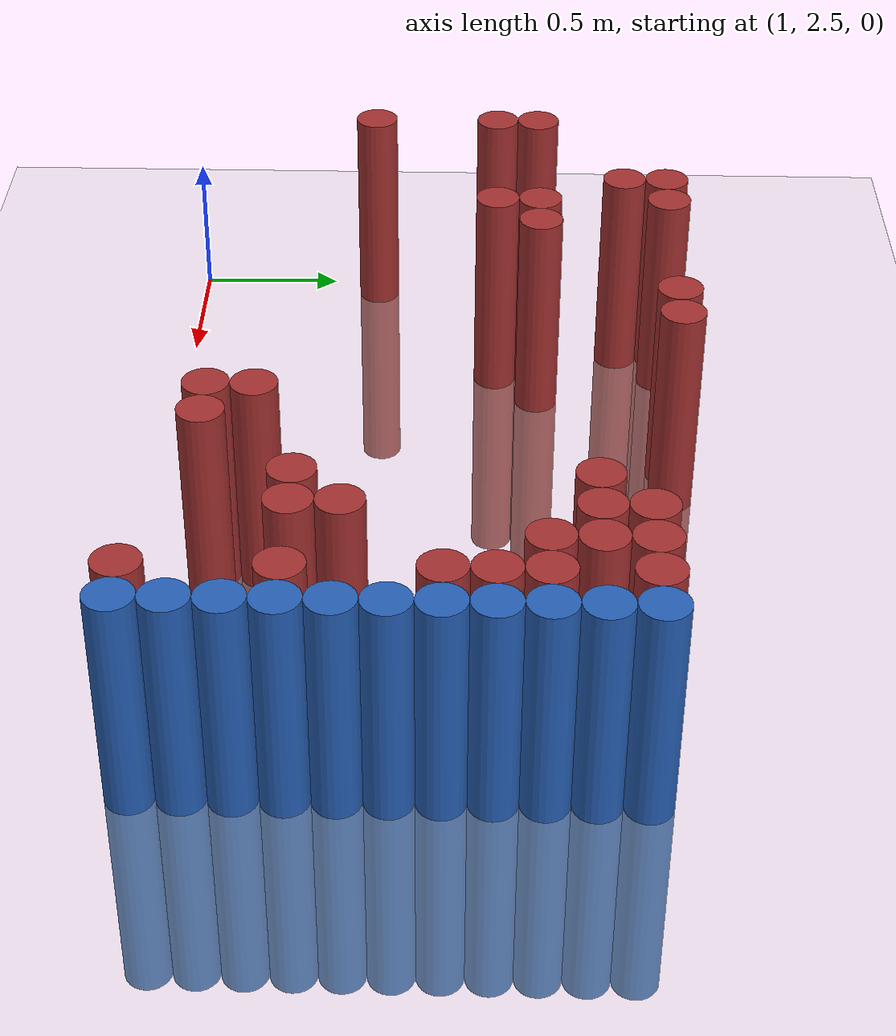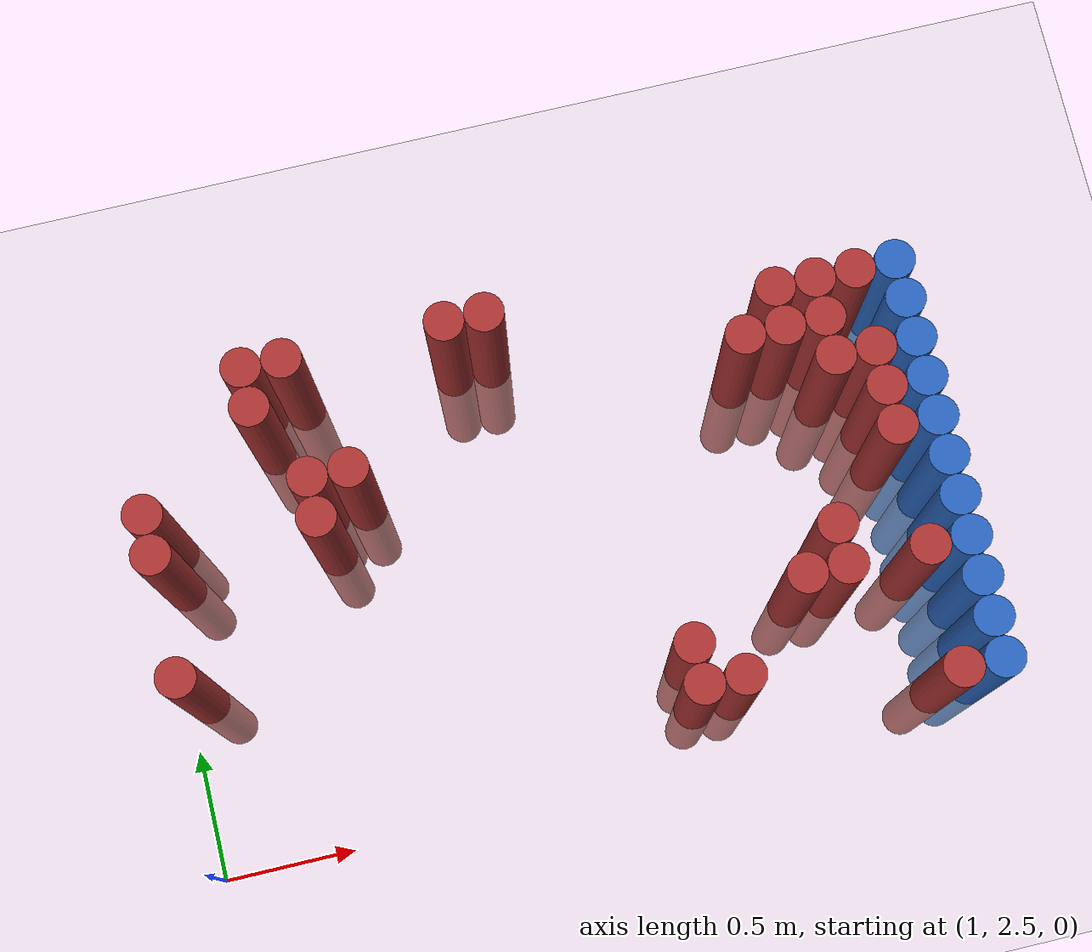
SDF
<sdf version="1.6">
 <world name="default">
  <model name="ground_plane">
   <static>1</static>
   <link name="link">
    <collision name="collision">
     <geometry><plane><normal>0 0 1</normal><size>100 100</size></plane></geometry>
     <surface><friction><ode><mu>100</mu><mu2>50</mu2></ode></friction></surface>
    </collision>
    <visual name="visual">
     <cast_shadows>0</cast_shadows>
     <geometry><plane><normal>0 0 1</normal><size>100 100</size></plane></geometry>
     <material>
      <script><uri>file://media/materials/scripts/gazebo.material</uri><name>Gazebo/Grey</name></script>
     </material>
    </visual>
   </link>
  </model>
  <model name="unit_cylinder_148">
   <static>1</static>
   <pose>3.925000 2.575000 0.000000 0.000000 0.000000 0.000000</pose>
   <link name="link">
    <inertial>
     <mass>1</mass>
     <inertia><ixx>0.145833</ixx><ixy>0</ixy><ixz>0</ixz><iyy>0.145833</iyy><iyz>0</iyz><izz>0.125</izz></inertia>
    </inertial>
    <collision name="collision">
     <geometry><cylinder><radius>0.075000</radius><length>1.5</length></cylinder></geometry>
    </collision>
    <visual name="visual">
     <geometry><cylinder><radius>0.075000</radius><length>1.5</length></cylinder></geometry>
     <material>
      <ambient>0.152000 0.379000 0.720000 1</ambient>
      <diffuse>0.152000 0.379000 0.720000 1</diffuse>
     </material>
     <material>
      <script><name>Gazebo/Grey</name><uri>file://media/materials/scripts/gazebo.material</uri></script>
     </material>
    </visual>
   </link>
  </model>
  <model name="unit_cylinder_150">
   <static>1</static>
   <pose>3.925000 2.725000 0.000000 0.000000 0.000000 0.000000</pose>
   <link name="link">
    <inertial>
     <mass>1</mass>
     <inertia><ixx>0.145833</ixx><ixy>0</ixy><ixz>0</ixz><iyy>0.145833</iyy><iyz>0</iyz><izz>0.125</izz></inertia>
    </inertial>
    <collision name="collision">
     <geometry><cylinder><radius>0.075000</radius><length>1.5</length></cylinder></geometry>
    </collision>
    <visual name="visual">
     <geometry><cylinder><radius>0.075000</radius><length>1.5</length></cylinder></geometry>
     <material>
      <ambient>0.152000 0.379000 0.720000 1</ambient>
      <diffuse>0.152000 0.379000 0.720000 1</diffuse>
     </material>
     <material>
      <script><name>Gazebo/Grey</name><uri>file://media/materials/scripts/gazebo.material</uri></script>
     </material>
    </visual>
   </link>
  </model>
  <model name="unit_cylinder_152">
   <static>1</static>
   <pose>3.925000 2.875000 0.000000 0.000000 0.000000 0.000000</pose>
   <link name="link">
    <inertial>
     <mass>1</mass>
     <inertia><ixx>0.145833</ixx><ixy>0</ixy><ixz>0</ixz><iyy>0.145833</iyy><iyz>0</iyz><izz>0.125</izz></inertia>
    </inertial>
    <collision name="collision">
     <geometry><cylinder><radius>0.075000</radius><length>1.5</length></cylinder></geometry>
    </collision>
    <visual name="visual">
     <geometry><cylinder><radius>0.075000</radius><length>1.5</length></cylinder></geometry>
     <material>
      <ambient>0.152000 0.379000 0.720000 1</ambient>
      <diffuse>0.152000 0.379000 0.720000 1</diffuse>
     </material>
     <material>
      <script><name>Gazebo/Grey</name><uri>file://media/materials/scripts/gazebo.material</uri></script>
     </material>
    </visual>
   </link>
  </model>
  <model name="unit_cylinder_154">
   <static>1</static>
   <pose>3.925000 3.025000 0.000000 0.000000 0.000000 0.000000</pose>
   <link name="link">
    <inertial>
     <mass>1</mass>
     <inertia><ixx>0.145833</ixx><ixy>0</ixy><ixz>0</ixz><iyy>0.145833</iyy><iyz>0</iyz><izz>0.125</izz></inertia>
    </inertial>
    <collision name="collision">
     <geometry><cylinder><radius>0.075000</radius><length>1.5</length></cylinder></geometry>
    </collision>
    <visual name="visual">
     <geometry><cylinder><radius>0.075000</radius><length>1.5</length></cylinder></geometry>
     <material>
      <ambient>0.152000 0.379000 0.720000 1</ambient>
      <diffuse>0.152000 0.379000 0.720000 1</diffuse>
     </material>
     <material>
      <script><name>Gazebo/Grey</name><uri>file://media/materials/scripts/gazebo.material</uri></script>
     </material>
    </visual>
   </link>
  </model>
  <model name="unit_cylinder_156">
   <static>1</static>
   <pose>3.925000 3.175000 0.000000 0.000000 0.000000 0.000000</pose>
   <link name="link">
    <inertial>
     <mass>1</mass>
     <inertia><ixx>0.145833</ixx><ixy>0</ixy><ixz>0</ixz><iyy>0.145833</iyy><iyz>0</iyz><izz>0.125</izz></inertia>
    </inertial>
    <collision name="collision">
     <geometry><cylinder><radius>0.075000</radius><length>1.5</length></cylinder></geometry>
    </collision>
    <visual name="visual">
     <geometry><cylinder><radius>0.075000</radius><length>1.5</length></cylinder></geometry>
     <material>
      <ambient>0.152000 0.379000 0.720000 1</ambient>
      <diffuse>0.152000 0.379000 0.720000 1</diffuse>
     </material>
     <material>
      <script><name>Gazebo/Grey</name><uri>file://media/materials/scripts/gazebo.material</uri></script>
     </material>
    </visual>
   </link>
  </model>
  <model name="unit_cylinder_158">
   <static>1</static>
   <pose>3.925000 3.325000 0.000000 0.000000 0.000000 0.000000</pose>
   <link name="link">
    <inertial>
     <mass>1</mass>
     <inertia><ixx>0.145833</ixx><ixy>0</ixy><ixz>0</ixz><iyy>0.145833</iyy><iyz>0</iyz><izz>0.125</izz></inertia>
    </inertial>
    <collision name="collision">
     <geometry><cylinder><radius>0.075000</radius><length>1.5</length></cylinder></geometry>
    </collision>
    <visual name="visual">
     <geometry><cylinder><radius>0.075000</radius><length>1.5</length></cylinder></geometry>
     <material>
      <ambient>0.152000 0.379000 0.720000 1</ambient>
      <diffuse>0.152000 0.379000 0.720000 1</diffuse>
     </material>
     <material>
      <script><name>Gazebo/Grey</name><uri>file://media/materials/scripts/gazebo.material</uri></script>
     </material>
    </visual>
   </link>
  </model>
  <model name="unit_cylinder_160">
   <static>1</static>
   <pose>3.925000 3.475000 0.000000 0.000000 0.000000 0.000000</pose>
   <link name="link">
    <inertial>
     <mass>1</mass>
     <inertia><ixx>0.145833</ixx><ixy>0</ixy><ixz>0</ixz><iyy>0.145833</iyy><iyz>0</iyz><izz>0.125</izz></inertia>
    </inertial>
    <collision name="collision">
     <geometry><cylinder><radius>0.075000</radius><length>1.5</length></cylinder></geometry>
    </collision>
    <visual name="visual">
     <geometry><cylinder><radius>0.075000</radius><length>1.5</length></cylinder></geometry>
     <material>
      <ambient>0.152000 0.379000 0.720000 1</ambient>
      <diffuse>0.152000 0.379000 0.720000 1</diffuse>
     </material>
     <material>
      <script><name>Gazebo/Grey</name><uri>file://media/materials/scripts/gazebo.material</uri></script>
     </material>
    </visual>
   </link>
  </model>
  <model name="unit_cylinder_162">
   <static>1</static>
   <pose>3.925000 3.625000 0.000000 0.000000 0.000000 0.000000</pose>
   <link name="link">
    <inertial>
     <mass>1</mass>
     <inertia><ixx>0.145833</ixx><ixy>0</ixy><ixz>0</ixz><iyy>0.145833</iyy><iyz>0</iyz><izz>0.125</izz></inertia>
    </inertial>
    <collision name="collision">
     <geometry><cylinder><radius>0.075000</radius><length>1.5</length></cylinder></geometry>
    </collision>
    <visual name="visual">
     <geometry><cylinder><radius>0.075000</radius><length>1.5</length></cylinder></geometry>
     <material>
      <ambient>0.152000 0.379000 0.720000 1</ambient>
      <diffuse>0.152000 0.379000 0.720000 1</diffuse>
     </material>
     <material>
      <script><name>Gazebo/Grey</name><uri>file://media/materials/scripts/gazebo.material</uri></script>
     </material>
    </visual>
   </link>
  </model>
  <model name="unit_cylinder_164">
   <static>1</static>
   <pose>3.925000 3.775000 0.000000 0.000000 0.000000 0.000000</pose>
   <link name="link">
    <inertial>
     <mass>1</mass>
     <inertia><ixx>0.145833</ixx><ixy>0</ixy><ixz>0</ixz><iyy>0.145833</iyy><iyz>0</iyz><izz>0.125</izz></inertia>
    </inertial>
    <collision name="collision">
     <geometry><cylinder><radius>0.075000</radius><length>1.5</length></cylinder></geometry>
    </collision>
    <visual name="visual">
     <geometry><cylinder><radius>0.075000</radius><length>1.5</length></cylinder></geometry>
     <material>
      <ambient>0.152000 0.379000 0.720000 1</ambient>
      <diffuse>0.152000 0.379000 0.720000 1</diffuse>
     </material>
     <material>
      <script><name>Gazebo/Grey</name><uri>file://media/materials/scripts/gazebo.material</uri></script>
     </material>
    </visual>
   </link>
  </model>
  <model name="unit_cylinder_166">
   <static>1</static>
   <pose>3.925000 3.925000 0.000000 0.000000 0.000000 0.000000</pose>
   <link name="link">
    <inertial>
     <mass>1</mass>
     <inertia><ixx>0.145833</ixx><ixy>0</ixy><ixz>0</ixz><iyy>0.145833</iyy><iyz>0</iyz><izz>0.125</izz></inertia>
    </inertial>
    <collision name="collision">
     <geometry><cylinder><radius>0.075000</radius><length>1.5</length></cylinder></geometry>
    </collision>
    <visual name="visual">
     <geometry><cylinder><radius>0.075000</radius><length>1.5</length></cylinder></geometry>
     <material>
      <ambient>0.152000 0.379000 0.720000 1</ambient>
      <diffuse>0.152000 0.379000 0.720000 1</diffuse>
     </material>
     <material>
      <script><name>Gazebo/Grey</name><uri>file://media/materials/scripts/gazebo.material</uri></script>
     </material>
    </visual>
   </link>
  </model>
  <model name="unit_cylinder_168">
   <static>1</static>
   <pose>3.925000 4.075000 0.000000 0.000000 0.000000 0.000000</pose>
   <link name="link">
    <inertial>
     <mass>1</mass>
     <inertia><ixx>0.145833</ixx><ixy>0</ixy><ixz>0</ixz><iyy>0.145833</iyy><iyz>0</iyz><izz>0.125</izz></inertia>
    </inertial>
    <collision name="collision">
     <geometry><cylinder><radius>0.075000</radius><length>1.5</length></cylinder></geometry>
    </collision>
    <visual name="visual">
     <geometry><cylinder><radius>0.075000</radius><length>1.5</length></cylinder></geometry>
     <material>
      <ambient>0.152000 0.379000 0.720000 1</ambient>
      <diffuse>0.152000 0.379000 0.720000 1</diffuse>
     </material>
     <material>
      <script><name>Gazebo/Grey</name><uri>file://media/materials/scripts/gazebo.material</uri></script>
     </material>
    </visual>
   </link>
  </model>
  <model name="unit_cylinder_429">
   <static>1</static>
   <pose>1.075000 3.175000 0.000000 0.000000 0.000000 0.000000</pose>
   <link name="link">
    <inertial>
     <mass>1</mass>
     <inertia><ixx>0.145833</ixx><ixy>0</ixy><ixz>0</ixz><iyy>0.145833</iyy><iyz>0</iyz><izz>0.125</izz></inertia>
    </inertial>
    <collision name="collision">
     <geometry><cylinder><radius>0.075000</radius><length>1.5</length></cylinder></geometry>
    </collision>
    <visual name="visual">
     <geometry><cylinder><radius>0.075000</radius><length>1.5</length></cylinder></geometry>
     <material>
      <ambient>0.648000 0.192000 0.192000 1</ambient>
      <diffuse>0.648000 0.192000 0.192000 1</diffuse>
     </material>
     <material>
      <script><name>Gazebo/Grey</name><uri>file://media/materials/scripts/gazebo.material</uri></script>
     </material>
    </visual>
   </link>
  </model>
  <model name="unit_cylinder_430">
   <static>1</static>
   <pose>1.075000 3.625000 0.000000 0.000000 0.000000 0.000000</pose>
   <link name="link">
    <inertial>
     <mass>1</mass>
     <inertia><ixx>0.145833</ixx><ixy>0</ixy><ixz>0</ixz><iyy>0.145833</iyy><iyz>0</iyz><izz>0.125</izz></inertia>
    </inertial>
    <collision name="collision">
     <geometry><cylinder><radius>0.075000</radius><length>1.5</length></cylinder></geometry>
    </collision>
    <visual name="visual">
     <geometry><cylinder><radius>0.075000</radius><length>1.5</length></cylinder></geometry>
     <material>
      <ambient>0.648000 0.192000 0.192000 1</ambient>
      <diffuse>0.648000 0.192000 0.192000 1</diffuse>
     </material>
     <material>
      <script><name>Gazebo/Grey</name><uri>file://media/materials/scripts/gazebo.material</uri></script>
     </material>
    </visual>
   </link>
  </model>
  <model name="unit_cylinder_431">
   <static>1</static>
   <pose>1.075000 3.775000 0.000000 0.000000 0.000000 0.000000</pose>
   <link name="link">
    <inertial>
     <mass>1</mass>
     <inertia><ixx>0.145833</ixx><ixy>0</ixy><ixz>0</ixz><iyy>0.145833</iyy><iyz>0</iyz><izz>0.125</izz></inertia>
    </inertial>
    <collision name="collision">
     <geometry><cylinder><radius>0.075000</radius><length>1.5</length></cylinder></geometry>
    </collision>
    <visual name="visual">
     <geometry><cylinder><radius>0.075000</radius><length>1.5</length></cylinder></geometry>
     <material>
      <ambient>0.648000 0.192000 0.192000 1</ambient>
      <diffuse>0.648000 0.192000 0.192000 1</diffuse>
     </material>
     <material>
      <script><name>Gazebo/Grey</name><uri>file://media/materials/scripts/gazebo.material</uri></script>
     </material>
    </visual>
   </link>
  </model>
  <model name="unit_cylinder_445">
   <static>1</static>
   <pose>1.525000 4.075000 0.000000 0.000000 0.000000 0.000000</pose>
   <link name="link">
    <inertial>
     <mass>1</mass>
     <inertia><ixx>0.145833</ixx><ixy>0</ixy><ixz>0</ixz><iyy>0.145833</iyy><iyz>0</iyz><izz>0.125</izz></inertia>
    </inertial>
    <collision name="collision">
     <geometry><cylinder><radius>0.075000</radius><length>1.5</length></cylinder></geometry>
    </collision>
    <visual name="visual">
     <geometry><cylinder><radius>0.075000</radius><length>1.5</length></cylinder></geometry>
     <material>
      <ambient>0.648000 0.192000 0.192000 1</ambient>
      <diffuse>0.648000 0.192000 0.192000 1</diffuse>
     </material>
     <material>
      <script><name>Gazebo/Grey</name><uri>file://media/materials/scripts/gazebo.material</uri></script>
     </material>
    </visual>
   </link>
  </model>
  <model name="unit_cylinder_446">
   <static>1</static>
   <pose>1.525000 4.225000 0.000000 0.000000 0.000000 0.000000</pose>
   <link name="link">
    <inertial>
     <mass>1</mass>
     <inertia><ixx>0.145833</ixx><ixy>0</ixy><ixz>0</ixz><iyy>0.145833</iyy><iyz>0</iyz><izz>0.125</izz></inertia>
    </inertial>
    <collision name="collision">
     <geometry><cylinder><radius>0.075000</radius><length>1.5</length></cylinder></geometry>
    </collision>
    <visual name="visual">
     <geometry><cylinder><radius>0.075000</radius><length>1.5</length></cylinder></geometry>
     <material>
      <ambient>0.648000 0.192000 0.192000 1</ambient>
      <diffuse>0.648000 0.192000 0.192000 1</diffuse>
     </material>
     <material>
      <script><name>Gazebo/Grey</name><uri>file://media/materials/scripts/gazebo.material</uri></script>
     </material>
    </visual>
   </link>
  </model>
  <model name="unit_cylinder_454">
   <static>1</static>
   <pose>1.675000 3.625000 0.000000 0.000000 0.000000 0.000000</pose>
   <link name="link">
    <inertial>
     <mass>1</mass>
     <inertia><ixx>0.145833</ixx><ixy>0</ixy><ixz>0</ixz><iyy>0.145833</iyy><iyz>0</iyz><izz>0.125</izz></inertia>
    </inertial>
    <collision name="collision">
     <geometry><cylinder><radius>0.075000</radius><length>1.5</length></cylinder></geometry>
    </collision>
    <visual name="visual">
     <geometry><cylinder><radius>0.075000</radius><length>1.5</length></cylinder></geometry>
     <material>
      <ambient>0.648000 0.192000 0.192000 1</ambient>
      <diffuse>0.648000 0.192000 0.192000 1</diffuse>
     </material>
     <material>
      <script><name>Gazebo/Grey</name><uri>file://media/materials/scripts/gazebo.material</uri></script>
     </material>
    </visual>
   </link>
  </model>
  <model name="unit_cylinder_455">
   <static>1</static>
   <pose>1.675000 3.775000 0.000000 0.000000 0.000000 0.000000</pose>
   <link name="link">
    <inertial>
     <mass>1</mass>
     <inertia><ixx>0.145833</ixx><ixy>0</ixy><ixz>0</ixz><iyy>0.145833</iyy><iyz>0</iyz><izz>0.125</izz></inertia>
    </inertial>
    <collision name="collision">
     <geometry><cylinder><radius>0.075000</radius><length>1.5</length></cylinder></geometry>
    </collision>
    <visual name="visual">
     <geometry><cylinder><radius>0.075000</radius><length>1.5</length></cylinder></geometry>
     <material>
      <ambient>0.648000 0.192000 0.192000 1</ambient>
      <diffuse>0.648000 0.192000 0.192000 1</diffuse>
     </material>
     <material>
      <script><name>Gazebo/Grey</name><uri>file://media/materials/scripts/gazebo.material</uri></script>
     </material>
    </visual>
   </link>
  </model>
  <model name="unit_cylinder_456">
   <static>1</static>
   <pose>1.675000 4.225000 0.000000 0.000000 0.000000 0.000000</pose>
   <link name="link">
    <inertial>
     <mass>1</mass>
     <inertia><ixx>0.145833</ixx><ixy>0</ixy><ixz>0</ixz><iyy>0.145833</iyy><iyz>0</iyz><izz>0.125</izz></inertia>
    </inertial>
    <collision name="collision">
     <geometry><cylinder><radius>0.075000</radius><length>1.5</length></cylinder></geometry>
    </collision>
    <visual name="visual">
     <geometry><cylinder><radius>0.075000</radius><length>1.5</length></cylinder></geometry>
     <material>
      <ambient>0.648000 0.192000 0.192000 1</ambient>
      <diffuse>0.648000 0.192000 0.192000 1</diffuse>
     </material>
     <material>
      <script><name>Gazebo/Grey</name><uri>file://media/materials/scripts/gazebo.material</uri></script>
     </material>
    </visual>
   </link>
  </model>
  <model name="unit_cylinder_463">
   <static>1</static>
   <pose>1.825000 3.775000 0.000000 0.000000 0.000000 0.000000</pose>
   <link name="link">
    <inertial>
     <mass>1</mass>
     <inertia><ixx>0.145833</ixx><ixy>0</ixy><ixz>0</ixz><iyy>0.145833</iyy><iyz>0</iyz><izz>0.125</izz></inertia>
    </inertial>
    <collision name="collision">
     <geometry><cylinder><radius>0.075000</radius><length>1.5</length></cylinder></geometry>
    </collision>
    <visual name="visual">
     <geometry><cylinder><radius>0.075000</radius><length>1.5</length></cylinder></geometry>
     <material>
      <ambient>0.648000 0.192000 0.192000 1</ambient>
      <diffuse>0.648000 0.192000 0.192000 1</diffuse>
     </material>
     <material>
      <script><name>Gazebo/Grey</name><uri>file://media/materials/scripts/gazebo.material</uri></script>
     </material>
    </visual>
   </link>
  </model>
  <model name="unit_cylinder_470">
   <static>1</static>
   <pose>2.275000 4.225000 0.000000 0.000000 0.000000 0.000000</pose>
   <link name="link">
    <inertial>
     <mass>1</mass>
     <inertia><ixx>0.145833</ixx><ixy>0</ixy><ixz>0</ixz><iyy>0.145833</iyy><iyz>0</iyz><izz>0.125</izz></inertia>
    </inertial>
    <collision name="collision">
     <geometry><cylinder><radius>0.075000</radius><length>1.5</length></cylinder></geometry>
    </collision>
    <visual name="visual">
     <geometry><cylinder><radius>0.075000</radius><length>1.5</length></cylinder></geometry>
     <material>
      <ambient>0.648000 0.192000 0.192000 1</ambient>
      <diffuse>0.648000 0.192000 0.192000 1</diffuse>
     </material>
     <material>
      <script><name>Gazebo/Grey</name><uri>file://media/materials/scripts/gazebo.material</uri></script>
     </material>
    </visual>
   </link>
  </model>
  <model name="unit_cylinder_474">
   <static>1</static>
   <pose>2.425000 4.225000 0.000000 0.000000 0.000000 0.000000</pose>
   <link name="link">
    <inertial>
     <mass>1</mass>
     <inertia><ixx>0.145833</ixx><ixy>0</ixy><ixz>0</ixz><iyy>0.145833</iyy><iyz>0</iyz><izz>0.125</izz></inertia>
    </inertial>
    <collision name="collision">
     <geometry><cylinder><radius>0.075000</radius><length>1.5</length></cylinder></geometry>
    </collision>
    <visual name="visual">
     <geometry><cylinder><radius>0.075000</radius><length>1.5</length></cylinder></geometry>
     <material>
      <ambient>0.648000 0.192000 0.192000 1</ambient>
      <diffuse>0.648000 0.192000 0.192000 1</diffuse>
     </material>
     <material>
      <script><name>Gazebo/Grey</name><uri>file://media/materials/scripts/gazebo.material</uri></script>
     </material>
    </visual>
   </link>
  </model>
  <model name="unit_cylinder_488">
   <static>1</static>
   <pose>2.875000 2.725000 0.000000 0.000000 0.000000 0.000000</pose>
   <link name="link">
    <inertial>
     <mass>1</mass>
     <inertia><ixx>0.145833</ixx><ixy>0</ixy><ixz>0</ixz><iyy>0.145833</iyy><iyz>0</iyz><izz>0.125</izz></inertia>
    </inertial>
    <collision name="collision">
     <geometry><cylinder><radius>0.075000</radius><length>1.5</length></cylinder></geometry>
    </collision>
    <visual name="visual">
     <geometry><cylinder><radius>0.075000</radius><length>1.5</length></cylinder></geometry>
     <material>
      <ambient>0.648000 0.192000 0.192000 1</ambient>
      <diffuse>0.648000 0.192000 0.192000 1</diffuse>
     </material>
     <material>
      <script><name>Gazebo/Grey</name><uri>file://media/materials/scripts/gazebo.material</uri></script>
     </material>
    </visual>
   </link>
  </model>
  <model name="unit_cylinder_489">
   <static>1</static>
   <pose>2.875000 2.875000 0.000000 0.000000 0.000000 0.000000</pose>
   <link name="link">
    <inertial>
     <mass>1</mass>
     <inertia><ixx>0.145833</ixx><ixy>0</ixy><ixz>0</ixz><iyy>0.145833</iyy><iyz>0</iyz><izz>0.125</izz></inertia>
    </inertial>
    <collision name="collision">
     <geometry><cylinder><radius>0.075000</radius><length>1.5</length></cylinder></geometry>
    </collision>
    <visual name="visual">
     <geometry><cylinder><radius>0.075000</radius><length>1.5</length></cylinder></geometry>
     <material>
      <ambient>0.648000 0.192000 0.192000 1</ambient>
      <diffuse>0.648000 0.192000 0.192000 1</diffuse>
     </material>
     <material>
      <script><name>Gazebo/Grey</name><uri>file://media/materials/scripts/gazebo.material</uri></script>
     </material>
    </visual>
   </link>
  </model>
  <model name="unit_cylinder_497">
   <static>1</static>
   <pose>3.025000 2.725000 0.000000 0.000000 0.000000 0.000000</pose>
   <link name="link">
    <inertial>
     <mass>1</mass>
     <inertia><ixx>0.145833</ixx><ixy>0</ixy><ixz>0</ixz><iyy>0.145833</iyy><iyz>0</iyz><izz>0.125</izz></inertia>
    </inertial>
    <collision name="collision">
     <geometry><cylinder><radius>0.075000</radius><length>1.5</length></cylinder></geometry>
    </collision>
    <visual name="visual">
     <geometry><cylinder><radius>0.075000</radius><length>1.5</length></cylinder></geometry>
     <material>
      <ambient>0.648000 0.192000 0.192000 1</ambient>
      <diffuse>0.648000 0.192000 0.192000 1</diffuse>
     </material>
     <material>
      <script><name>Gazebo/Grey</name><uri>file://media/materials/scripts/gazebo.material</uri></script>
     </material>
    </visual>
   </link>
  </model>
  <model name="unit_cylinder_514">
   <static>1</static>
   <pose>3.325000 3.025000 0.000000 0.000000 0.000000 0.000000</pose>
   <link name="link">
    <inertial>
     <mass>1</mass>
     <inertia><ixx>0.145833</ixx><ixy>0</ixy><ixz>0</ixz><iyy>0.145833</iyy><iyz>0</iyz><izz>0.125</izz></inertia>
    </inertial>
    <collision name="collision">
     <geometry><cylinder><radius>0.075000</radius><length>1.5</length></cylinder></geometry>
    </collision>
    <visual name="visual">
     <geometry><cylinder><radius>0.075000</radius><length>1.5</length></cylinder></geometry>
     <material>
      <ambient>0.648000 0.192000 0.192000 1</ambient>
      <diffuse>0.648000 0.192000 0.192000 1</diffuse>
     </material>
     <material>
      <script><name>Gazebo/Grey</name><uri>file://media/materials/scripts/gazebo.material</uri></script>
     </material>
    </visual>
   </link>
  </model>
  <model name="unit_cylinder_515">
   <static>1</static>
   <pose>3.325000 3.925000 0.000000 0.000000 0.000000 0.000000</pose>
   <link name="link">
    <inertial>
     <mass>1</mass>
     <inertia><ixx>0.145833</ixx><ixy>0</ixy><ixz>0</ixz><iyy>0.145833</iyy><iyz>0</iyz><izz>0.125</izz></inertia>
    </inertial>
    <collision name="collision">
     <geometry><cylinder><radius>0.075000</radius><length>1.5</length></cylinder></geometry>
    </collision>
    <visual name="visual">
     <geometry><cylinder><radius>0.075000</radius><length>1.5</length></cylinder></geometry>
     <material>
      <ambient>0.648000 0.192000 0.192000 1</ambient>
      <diffuse>0.648000 0.192000 0.192000 1</diffuse>
     </material>
     <material>
      <script><name>Gazebo/Grey</name><uri>file://media/materials/scripts/gazebo.material</uri></script>
     </material>
    </visual>
   </link>
  </model>
  <model name="unit_cylinder_520">
   <static>1</static>
   <pose>3.475000 3.025000 0.000000 0.000000 0.000000 0.000000</pose>
   <link name="link">
    <inertial>
     <mass>1</mass>
     <inertia><ixx>0.145833</ixx><ixy>0</ixy><ixz>0</ixz><iyy>0.145833</iyy><iyz>0</iyz><izz>0.125</izz></inertia>
    </inertial>
    <collision name="collision">
     <geometry><cylinder><radius>0.075000</radius><length>1.5</length></cylinder></geometry>
    </collision>
    <visual name="visual">
     <geometry><cylinder><radius>0.075000</radius><length>1.5</length></cylinder></geometry>
     <material>
      <ambient>0.648000 0.192000 0.192000 1</ambient>
      <diffuse>0.648000 0.192000 0.192000 1</diffuse>
     </material>
     <material>
      <script><name>Gazebo/Grey</name><uri>file://media/materials/scripts/gazebo.material</uri></script>
     </material>
    </visual>
   </link>
  </model>
  <model name="unit_cylinder_521">
   <static>1</static>
   <pose>3.475000 3.175000 0.000000 0.000000 0.000000 0.000000</pose>
   <link name="link">
    <inertial>
     <mass>1</mass>
     <inertia><ixx>0.145833</ixx><ixy>0</ixy><ixz>0</ixz><iyy>0.145833</iyy><iyz>0</iyz><izz>0.125</izz></inertia>
    </inertial>
    <collision name="collision">
     <geometry><cylinder><radius>0.075000</radius><length>1.5</length></cylinder></geometry>
    </collision>
    <visual name="visual">
     <geometry><cylinder><radius>0.075000</radius><length>1.5</length></cylinder></geometry>
     <material>
      <ambient>0.648000 0.192000 0.192000 1</ambient>
      <diffuse>0.648000 0.192000 0.192000 1</diffuse>
     </material>
     <material>
      <script><name>Gazebo/Grey</name><uri>file://media/materials/scripts/gazebo.material</uri></script>
     </material>
    </visual>
   </link>
  </model>
  <model name="unit_cylinder_522">
   <static>1</static>
   <pose>3.475000 3.925000 0.000000 0.000000 0.000000 0.000000</pose>
   <link name="link">
    <inertial>
     <mass>1</mass>
     <inertia><ixx>0.145833</ixx><ixy>0</ixy><ixz>0</ixz><iyy>0.145833</iyy><iyz>0</iyz><izz>0.125</izz></inertia>
    </inertial>
    <collision name="collision">
     <geometry><cylinder><radius>0.075000</radius><length>1.5</length></cylinder></geometry>
    </collision>
    <visual name="visual">
     <geometry><cylinder><radius>0.075000</radius><length>1.5</length></cylinder></geometry>
     <material>
      <ambient>0.648000 0.192000 0.192000 1</ambient>
      <diffuse>0.648000 0.192000 0.192000 1</diffuse>
     </material>
     <material>
      <script><name>Gazebo/Grey</name><uri>file://media/materials/scripts/gazebo.material</uri></script>
     </material>
    </visual>
   </link>
  </model>
  <model name="unit_cylinder_523">
   <static>1</static>
   <pose>3.475000 4.075000 0.000000 0.000000 0.000000 0.000000</pose>
   <link name="link">
    <inertial>
     <mass>1</mass>
     <inertia><ixx>0.145833</ixx><ixy>0</ixy><ixz>0</ixz><iyy>0.145833</iyy><iyz>0</iyz><izz>0.125</izz></inertia>
    </inertial>
    <collision name="collision">
     <geometry><cylinder><radius>0.075000</radius><length>1.5</length></cylinder></geometry>
    </collision>
    <visual name="visual">
     <geometry><cylinder><radius>0.075000</radius><length>1.5</length></cylinder></geometry>
     <material>
      <ambient>0.648000 0.192000 0.192000 1</ambient>
      <diffuse>0.648000 0.192000 0.192000 1</diffuse>
     </material>
     <material>
      <script><name>Gazebo/Grey</name><uri>file://media/materials/scripts/gazebo.material</uri></script>
     </material>
    </visual>
   </link>
  </model>
  <model name="unit_cylinder_530">
   <static>1</static>
   <pose>3.625000 3.775000 0.000000 0.000000 0.000000 0.000000</pose>
   <link name="link">
    <inertial>
     <mass>1</mass>
     <inertia><ixx>0.145833</ixx><ixy>0</ixy><ixz>0</ixz><iyy>0.145833</iyy><iyz>0</iyz><izz>0.125</izz></inertia>
    </inertial>
    <collision name="collision">
     <geometry><cylinder><radius>0.075000</radius><length>1.5</length></cylinder></geometry>
    </collision>
    <visual name="visual">
     <geometry><cylinder><radius>0.075000</radius><length>1.5</length></cylinder></geometry>
     <material>
      <ambient>0.648000 0.192000 0.192000 1</ambient>
      <diffuse>0.648000 0.192000 0.192000 1</diffuse>
     </material>
     <material>
      <script><name>Gazebo/Grey</name><uri>file://media/materials/scripts/gazebo.material</uri></script>
     </material>
    </visual>
   </link>
  </model>
  <model name="unit_cylinder_531">
   <static>1</static>
   <pose>3.625000 3.925000 0.000000 0.000000 0.000000 0.000000</pose>
   <link name="link">
    <inertial>
     <mass>1</mass>
     <inertia><ixx>0.145833</ixx><ixy>0</ixy><ixz>0</ixz><iyy>0.145833</iyy><iyz>0</iyz><izz>0.125</izz></inertia>
    </inertial>
    <collision name="collision">
     <geometry><cylinder><radius>0.075000</radius><length>1.5</length></cylinder></geometry>
    </collision>
    <visual name="visual">
     <geometry><cylinder><radius>0.075000</radius><length>1.5</length></cylinder></geometry>
     <material>
      <ambient>0.648000 0.192000 0.192000 1</ambient>
      <diffuse>0.648000 0.192000 0.192000 1</diffuse>
     </material>
     <material>
      <script><name>Gazebo/Grey</name><uri>file://media/materials/scripts/gazebo.material</uri></script>
     </material>
    </visual>
   </link>
  </model>
  <model name="unit_cylinder_532">
   <static>1</static>
   <pose>3.625000 4.075000 0.000000 0.000000 0.000000 0.000000</pose>
   <link name="link">
    <inertial>
     <mass>1</mass>
     <inertia><ixx>0.145833</ixx><ixy>0</ixy><ixz>0</ixz><iyy>0.145833</iyy><iyz>0</iyz><izz>0.125</izz></inertia>
    </inertial>
    <collision name="collision">
     <geometry><cylinder><radius>0.075000</radius><length>1.5</length></cylinder></geometry>
    </collision>
    <visual name="visual">
     <geometry><cylinder><radius>0.075000</radius><length>1.5</length></cylinder></geometry>
     <material>
      <ambient>0.648000 0.192000 0.192000 1</ambient>
      <diffuse>0.648000 0.192000 0.192000 1</diffuse>
     </material>
     <material>
      <script><name>Gazebo/Grey</name><uri>file://media/materials/scripts/gazebo.material</uri></script>
     </material>
    </visual>
   </link>
  </model>
  <model name="unit_cylinder_552">
   <static>1</static>
   <pose>3.775000 2.575000 0.000000 0.000000 0.000000 0.000000</pose>
   <link name="link">
    <inertial>
     <mass>1</mass>
     <inertia><ixx>0.145833</ixx><ixy>0</ixy><ixz>0</ixz><iyy>0.145833</iyy><iyz>0</iyz><izz>0.125</izz></inertia>
    </inertial>
    <collision name="collision">
     <geometry><cylinder><radius>0.075000</radius><length>1.5</length></cylinder></geometry>
    </collision>
    <visual name="visual">
     <geometry><cylinder><radius>0.075000</radius><length>1.5</length></cylinder></geometry>
     <material>
      <ambient>0.648000 0.192000 0.192000 1</ambient>
      <diffuse>0.648000 0.192000 0.192000 1</diffuse>
     </material>
     <material>
      <script><name>Gazebo/Grey</name><uri>file://media/materials/scripts/gazebo.material</uri></script>
     </material>
    </visual>
   </link>
  </model>
  <model name="unit_cylinder_553">
   <static>1</static>
   <pose>3.775000 3.025000 0.000000 0.000000 0.000000 0.000000</pose>
   <link name="link">
    <inertial>
     <mass>1</mass>
     <inertia><ixx>0.145833</ixx><ixy>0</ixy><ixz>0</ixz><iyy>0.145833</iyy><iyz>0</iyz><izz>0.125</izz></inertia>
    </inertial>
    <collision name="collision">
     <geometry><cylinder><radius>0.075000</radius><length>1.5</length></cylinder></geometry>
    </collision>
    <visual name="visual">
     <geometry><cylinder><radius>0.075000</radius><length>1.5</length></cylinder></geometry>
     <material>
      <ambient>0.648000 0.192000 0.192000 1</ambient>
      <diffuse>0.648000 0.192000 0.192000 1</diffuse>
     </material>
     <material>
      <script><name>Gazebo/Grey</name><uri>file://media/materials/scripts/gazebo.material</uri></script>
     </material>
    </visual>
   </link>
  </model>
  <model name="unit_cylinder_554">
   <static>1</static>
   <pose>3.775000 3.475000 0.000000 0.000000 0.000000 0.000000</pose>
   <link name="link">
    <inertial>
     <mass>1</mass>
     <inertia><ixx>0.145833</ixx><ixy>0</ixy><ixz>0</ixz><iyy>0.145833</iyy><iyz>0</iyz><izz>0.125</izz></inertia>
    </inertial>
    <collision name="collision">
     <geometry><cylinder><radius>0.075000</radius><length>1.5</length></cylinder></geometry>
    </collision>
    <visual name="visual">
     <geometry><cylinder><radius>0.075000</radius><length>1.5</length></cylinder></geometry>
     <material>
      <ambient>0.648000 0.192000 0.192000 1</ambient>
      <diffuse>0.648000 0.192000 0.192000 1</diffuse>
     </material>
     <material>
      <script><name>Gazebo/Grey</name><uri>file://media/materials/scripts/gazebo.material</uri></script>
     </material>
    </visual>
   </link>
  </model>
  <model name="unit_cylinder_555">
   <static>1</static>
   <pose>3.775000 3.625000 0.000000 0.000000 0.000000 0.000000</pose>
   <link name="link">
    <inertial>
     <mass>1</mass>
     <inertia><ixx>0.145833</ixx><ixy>0</ixy><ixz>0</ixz><iyy>0.145833</iyy><iyz>0</iyz><izz>0.125</izz></inertia>
    </inertial>
    <collision name="collision">
     <geometry><cylinder><radius>0.075000</radius><length>1.5</length></cylinder></geometry>
    </collision>
    <visual name="visual">
     <geometry><cylinder><radius>0.075000</radius><length>1.5</length></cylinder></geometry>
     <material>
      <ambient>0.648000 0.192000 0.192000 1</ambient>
      <diffuse>0.648000 0.192000 0.192000 1</diffuse>
     </material>
     <material>
      <script><name>Gazebo/Grey</name><uri>file://media/materials/scripts/gazebo.material</uri></script>
     </material>
    </visual>
   </link>
  </model>
  <model name="unit_cylinder_556">
   <static>1</static>
   <pose>3.775000 3.775000 0.000000 0.000000 0.000000 0.000000</pose>
   <link name="link">
    <inertial>
     <mass>1</mass>
     <inertia><ixx>0.145833</ixx><ixy>0</ixy><ixz>0</ixz><iyy>0.145833</iyy><iyz>0</iyz><izz>0.125</izz></inertia>
    </inertial>
    <collision name="collision">
     <geometry><cylinder><radius>0.075000</radius><length>1.5</length></cylinder></geometry>
    </collision>
    <visual name="visual">
     <geometry><cylinder><radius>0.075000</radius><length>1.5</length></cylinder></geometry>
     <material>
      <ambient>0.648000 0.192000 0.192000 1</ambient>
      <diffuse>0.648000 0.192000 0.192000 1</diffuse>
     </material>
     <material>
      <script><name>Gazebo/Grey</name><uri>file://media/materials/scripts/gazebo.material</uri></script>
     </material>
    </visual>
   </link>
  </model>
  <model name="unit_cylinder_557">
   <static>1</static>
   <pose>3.775000 4.075000 0.000000 0.000000 0.000000 0.000000</pose>
   <link name="link">
    <inertial>
     <mass>1</mass>
     <inertia><ixx>0.145833</ixx><ixy>0</ixy><ixz>0</ixz><iyy>0.145833</iyy><iyz>0</iyz><izz>0.125</izz></inertia>
    </inertial>
    <collision name="collision">
     <geometry><cylinder><radius>0.075000</radius><length>1.5</length></cylinder></geometry>
    </collision>
    <visual name="visual">
     <geometry><cylinder><radius>0.075000</radius><length>1.5</length></cylinder></geometry>
     <material>
      <ambient>0.648000 0.192000 0.192000 1</ambient>
      <diffuse>0.648000 0.192000 0.192000 1</diffuse>
     </material>
     <material>
      <script><name>Gazebo/Grey</name><uri>file://media/materials/scripts/gazebo.material</uri></script>
     </material>
    </visual>
   </link>
  </model>
  <model name="unit_cylinder_593">
   <static>1</static>
   <pose>3.925000 2.575000 0.000000 0.000000 0.000000 0.000000</pose>
   <link name="link">
    <inertial>
     <mass>1</mass>
     <inertia><ixx>0.145833</ixx><ixy>0</ixy><ixz>0</ixz><iyy>0.145833</iyy><iyz>0</iyz><izz>0.125</izz></inertia>
    </inertial>
    <collision name="collision">
     <geometry><cylinder><radius>0.075000</radius><length>1.5</length></cylinder></geometry>
    </collision>
    <visual name="visual">
     <geometry><cylinder><radius>0.075000</radius><length>1.5</length></cylinder></geometry>
     <material>
      <ambient>0.152000 0.379000 0.720000 1</ambient>
      <diffuse>0.152000 0.379000 0.720000 1</diffuse>
     </material>
     <material>
      <script><name>Gazebo/Grey</name><uri>file://media/materials/scripts/gazebo.material</uri></script>
     </material>
    </visual>
   </link>
  </model>
  <model name="unit_cylinder_594">
   <static>1</static>
   <pose>3.925000 2.725000 0.000000 0.000000 0.000000 0.000000</pose>
   <link name="link">
    <inertial>
     <mass>1</mass>
     <inertia><ixx>0.145833</ixx><ixy>0</ixy><ixz>0</ixz><iyy>0.145833</iyy><iyz>0</iyz><izz>0.125</izz></inertia>
    </inertial>
    <collision name="collision">
     <geometry><cylinder><radius>0.075000</radius><length>1.5</length></cylinder></geometry>
    </collision>
    <visual name="visual">
     <geometry><cylinder><radius>0.075000</radius><length>1.5</length></cylinder></geometry>
     <material>
      <ambient>0.152000 0.379000 0.720000 1</ambient>
      <diffuse>0.152000 0.379000 0.720000 1</diffuse>
     </material>
     <material>
      <script><name>Gazebo/Grey</name><uri>file://media/materials/scripts/gazebo.material</uri></script>
     </material>
    </visual>
   </link>
  </model>
  <model name="unit_cylinder_595">
   <static>1</static>
   <pose>3.925000 2.875000 0.000000 0.000000 0.000000 0.000000</pose>
   <link name="link">
    <inertial>
     <mass>1</mass>
     <inertia><ixx>0.145833</ixx><ixy>0</ixy><ixz>0</ixz><iyy>0.145833</iyy><iyz>0</iyz><izz>0.125</izz></inertia>
    </inertial>
    <collision name="collision">
     <geometry><cylinder><radius>0.075000</radius><length>1.5</length></cylinder></geometry>
    </collision>
    <visual name="visual">
     <geometry><cylinder><radius>0.075000</radius><length>1.5</length></cylinder></geometry>
     <material>
      <ambient>0.152000 0.379000 0.720000 1</ambient>
      <diffuse>0.152000 0.379000 0.720000 1</diffuse>
     </material>
     <material>
      <script><name>Gazebo/Grey</name><uri>file://media/materials/scripts/gazebo.material</uri></script>
     </material>
    </visual>
   </link>
  </model>
  <model name="unit_cylinder_596">
   <static>1</static>
   <pose>3.925000 3.025000 0.000000 0.000000 0.000000 0.000000</pose>
   <link name="link">
    <inertial>
     <mass>1</mass>
     <inertia><ixx>0.145833</ixx><ixy>0</ixy><ixz>0</ixz><iyy>0.145833</iyy><iyz>0</iyz><izz>0.125</izz></inertia>
    </inertial>
    <collision name="collision">
     <geometry><cylinder><radius>0.075000</radius><length>1.5</length></cylinder></geometry>
    </collision>
    <visual name="visual">
     <geometry><cylinder><radius>0.075000</radius><length>1.5</length></cylinder></geometry>
     <material>
      <ambient>0.152000 0.379000 0.720000 1</ambient>
      <diffuse>0.152000 0.379000 0.720000 1</diffuse>
     </material>
     <material>
      <script><name>Gazebo/Grey</name><uri>file://media/materials/scripts/gazebo.material</uri></script>
     </material>
    </visual>
   </link>
  </model>
  <model name="unit_cylinder_597">
   <static>1</static>
   <pose>3.925000 3.175000 0.000000 0.000000 0.000000 0.000000</pose>
   <link name="link">
    <inertial>
     <mass>1</mass>
     <inertia><ixx>0.145833</ixx><ixy>0</ixy><ixz>0</ixz><iyy>0.145833</iyy><iyz>0</iyz><izz>0.125</izz></inertia>
    </inertial>
    <collision name="collision">
     <geometry><cylinder><radius>0.075000</radius><length>1.5</length></cylinder></geometry>
    </collision>
    <visual name="visual">
     <geometry><cylinder><radius>0.075000</radius><length>1.5</length></cylinder></geometry>
     <material>
      <ambient>0.152000 0.379000 0.720000 1</ambient>
      <diffuse>0.152000 0.379000 0.720000 1</diffuse>
     </material>
     <material>
      <script><name>Gazebo/Grey</name><uri>file://media/materials/scripts/gazebo.material</uri></script>
     </material>
    </visual>
   </link>
  </model>
  <model name="unit_cylinder_598">
   <static>1</static>
   <pose>3.925000 3.325000 0.000000 0.000000 0.000000 0.000000</pose>
   <link name="link">
    <inertial>
     <mass>1</mass>
     <inertia><ixx>0.145833</ixx><ixy>0</ixy><ixz>0</ixz><iyy>0.145833</iyy><iyz>0</iyz><izz>0.125</izz></inertia>
    </inertial>
    <collision name="collision">
     <geometry><cylinder><radius>0.075000</radius><length>1.5</length></cylinder></geometry>
    </collision>
    <visual name="visual">
     <geometry><cylinder><radius>0.075000</radius><length>1.5</length></cylinder></geometry>
     <material>
      <ambient>0.152000 0.379000 0.720000 1</ambient>
      <diffuse>0.152000 0.379000 0.720000 1</diffuse>
     </material>
     <material>
      <script><name>Gazebo/Grey</name><uri>file://media/materials/scripts/gazebo.material</uri></script>
     </material>
    </visual>
   </link>
  </model>
  <model name="unit_cylinder_599">
   <static>1</static>
   <pose>3.925000 3.475000 0.000000 0.000000 0.000000 0.000000</pose>
   <link name="link">
    <inertial>
     <mass>1</mass>
     <inertia><ixx>0.145833</ixx><ixy>0</ixy><ixz>0</ixz><iyy>0.145833</iyy><iyz>0</iyz><izz>0.125</izz></inertia>
    </inertial>
    <collision name="collision">
     <geometry><cylinder><radius>0.075000</radius><length>1.5</length></cylinder></geometry>
    </collision>
    <visual name="visual">
     <geometry><cylinder><radius>0.075000</radius><length>1.5</length></cylinder></geometry>
     <material>
      <ambient>0.152000 0.379000 0.720000 1</ambient>
      <diffuse>0.152000 0.379000 0.720000 1</diffuse>
     </material>
     <material>
      <script><name>Gazebo/Grey</name><uri>file://media/materials/scripts/gazebo.material</uri></script>
     </material>
    </visual>
   </link>
  </model>
  <model name="unit_cylinder_600">
   <static>1</static>
   <pose>3.925000 3.625000 0.000000 0.000000 0.000000 0.000000</pose>
   <link name="link">
    <inertial>
     <mass>1</mass>
     <inertia><ixx>0.145833</ixx><ixy>0</ixy><ixz>0</ixz><iyy>0.145833</iyy><iyz>0</iyz><izz>0.125</izz></inertia>
    </inertial>
    <collision name="collision">
     <geometry><cylinder><radius>0.075000</radius><length>1.5</length></cylinder></geometry>
    </collision>
    <visual name="visual">
     <geometry><cylinder><radius>0.075000</radius><length>1.5</length></cylinder></geometry>
     <material>
      <ambient>0.152000 0.379000 0.720000 1</ambient>
      <diffuse>0.152000 0.379000 0.720000 1</diffuse>
     </material>
     <material>
      <script><name>Gazebo/Grey</name><uri>file://media/materials/scripts/gazebo.material</uri></script>
     </material>
    </visual>
   </link>
  </model>
  <model name="unit_cylinder_601">
   <static>1</static>
   <pose>3.925000 3.775000 0.000000 0.000000 0.000000 0.000000</pose>
   <link name="link">
    <inertial>
     <mass>1</mass>
     <inertia><ixx>0.145833</ixx><ixy>0</ixy><ixz>0</ixz><iyy>0.145833</iyy><iyz>0</iyz><izz>0.125</izz></inertia>
    </inertial>
    <collision name="collision">
     <geometry><cylinder><radius>0.075000</radius><length>1.5</length></cylinder></geometry>
    </collision>
    <visual name="visual">
     <geometry><cylinder><radius>0.075000</radius><length>1.5</length></cylinder></geometry>
     <material>
      <ambient>0.152000 0.379000 0.720000 1</ambient>
      <diffuse>0.152000 0.379000 0.720000 1</diffuse>
     </material>
     <material>
      <script><name>Gazebo/Grey</name><uri>file://media/materials/scripts/gazebo.material</uri></script>
     </material>
    </visual>
   </link>
  </model>
  <model name="unit_cylinder_602">
   <static>1</static>
   <pose>3.925000 3.925000 0.000000 0.000000 0.000000 0.000000</pose>
   <link name="link">
    <inertial>
     <mass>1</mass>
     <inertia><ixx>0.145833</ixx><ixy>0</ixy><ixz>0</ixz><iyy>0.145833</iyy><iyz>0</iyz><izz>0.125</izz></inertia>
    </inertial>
    <collision name="collision">
     <geometry><cylinder><radius>0.075000</radius><length>1.5</length></cylinder></geometry>
    </collision>
    <visual name="visual">
     <geometry><cylinder><radius>0.075000</radius><length>1.5</length></cylinder></geometry>
     <material>
      <ambient>0.152000 0.379000 0.720000 1</ambient>
      <diffuse>0.152000 0.379000 0.720000 1</diffuse>
     </material>
     <material>
      <script><name>Gazebo/Grey</name><uri>file://media/materials/scripts/gazebo.material</uri></script>
     </material>
    </visual>
   </link>
  </model>
  <model name="unit_cylinder_603">
   <static>1</static>
   <pose>3.925000 4.075000 0.000000 0.000000 0.000000 0.000000</pose>
   <link name="link">
    <inertial>
     <mass>1</mass>
     <inertia><ixx>0.145833</ixx><ixy>0</ixy><ixz>0</ixz><iyy>0.145833</iyy><iyz>0</iyz><izz>0.125</izz></inertia>
    </inertial>
    <collision name="collision">
     <geometry><cylinder><radius>0.075000</radius><length>1.5</length></cylinder></geometry>
    </collision>
    <visual name="visual">
     <geometry><cylinder><radius>0.075000</radius><length>1.5</length></cylinder></geometry>
     <material>
      <ambient>0.152000 0.379000 0.720000 1</ambient>
      <diffuse>0.152000 0.379000 0.720000 1</diffuse>
     </material>
     <material>
      <script><name>Gazebo/Grey</name><uri>file://media/materials/scripts/gazebo.material</uri></script>
     </material>
    </visual>
   </link>
  </model>
 </world>
</sdf>
